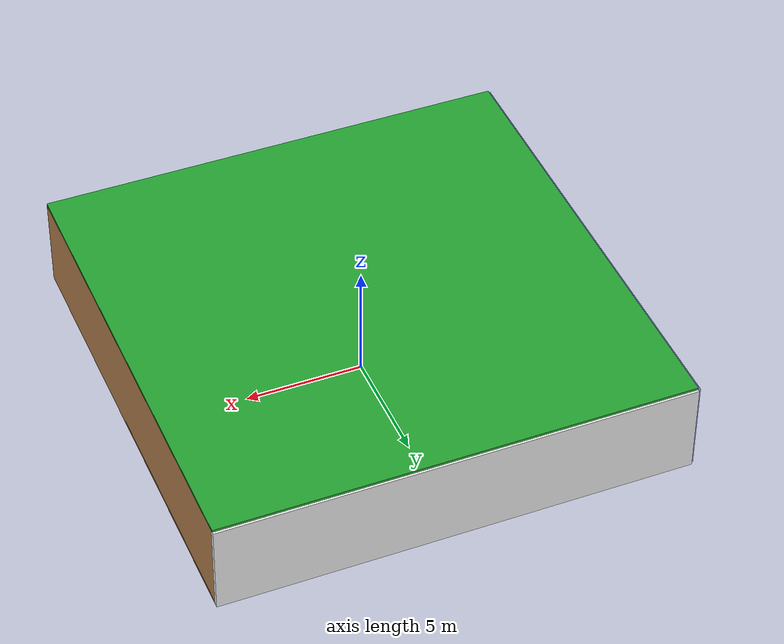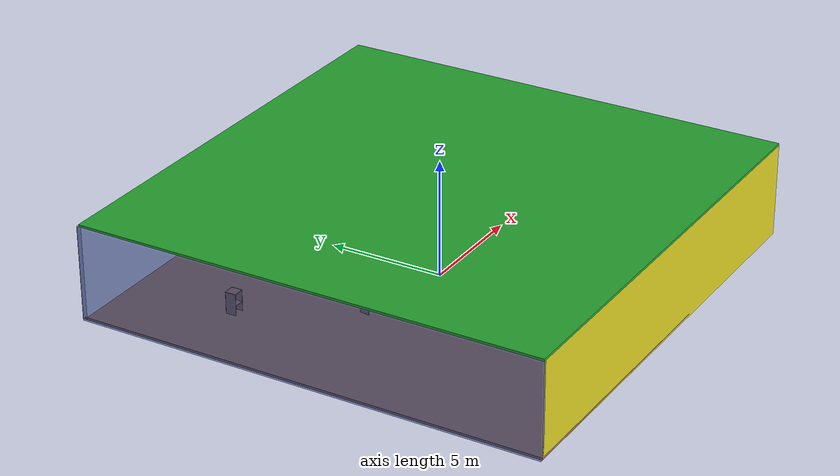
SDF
<sdf version="1.4">
 <world name="default">
  <physics type="ode">
   <max_step_size>0.001</max_step_size>
   <real_time_factor>1</real_time_factor>
   <real_time_update_rate>1000</real_time_update_rate>
   <gravity>0 0 -9.8</gravity>
  </physics>
  <scene><ambient>0.4 0.4 0.4 1</ambient><background>0.7 0.7 0.7 1</background><shadows>1</shadows></scene>
  <model name="Surrounding">
   <static>1</static>
   <link name="Ceiling">
    <collision name="Ceiling_Collision"><geometry><box><size>20 20 0.1</size></box></geometry></collision>
    <visual name="Ceiling_Visual">
     <geometry><box><size>20 20 0.1</size></box></geometry>
     <material>
      <script><uri>file://media/materials/scripts/gazebo.material</uri><name>Gazebo/GreenGlow</name></script>
     </material>
    </visual>
    <pose>0 0 4.05 0 0 0</pose>
   </link>
   <link name="Wall_South">
    <collision name="Wall_South_Collision">
     <geometry><box><size>20 0 4</size></box></geometry>
     <pose>0 0 2 0 -0 0</pose>
    </collision>
    <visual name="Wall_South_Visual">
     <pose>0 0 2 0 -0 0</pose>
     <geometry><box><size>20 0 4</size></box></geometry>
     <material>
      <script><uri>file://media/materials/scripts/gazebo.material</uri><name>Gazebo/Yellow</name></script>
     </material>
    </visual>
    <velocity_decay><linear>0</linear><angular>0</angular></velocity_decay>
    <pose>0 -10 0 0 -0 0</pose>
   </link>
   <link name="Wall_East">
    <collision name="Wall_21_Collision">
     <geometry><box><size>20 0 4</size></box></geometry>
     <pose>0 0 2 0 -0 0</pose>
    </collision>
    <visual name="Wall_21_Visual">
     <pose>0 0 2 0 -0 0</pose>
     <geometry><box><size>20 0 4</size></box></geometry>
     <material>
      <script><uri>file://media/materials/scripts/gazebo.material</uri><name>Gazebo/Wood</name></script>
     </material>
    </visual>
    <velocity_decay><linear>0</linear><angular>0</angular></velocity_decay>
    <pose>10 0 0 0 -0 1.5708</pose>
   </link>
   <link name="Wall_North">
    <collision name="Wall_22_Collision">
     <geometry><box><size>20 0.2 4</size></box></geometry>
     <pose>0 0 2 0 -0 0</pose>
    </collision>
    <visual name="Wall_22_Visual">
     <pose>0 0 2 0 -0 0</pose>
     <geometry><box><size>20 0.2 4</size></box></geometry>
     <material>
      <script><uri>file://media/materials/scripts/gazebo.material</uri><name>Gazebo/WhiteGlow</name></script>
     </material>
    </visual>
    <velocity_decay><linear>0</linear><angular>0</angular></velocity_decay>
    <pose>0 10 0 0 -0 0</pose>
   </link>
   <link name="Wall_West">
    <collision name="Wall_23_Collision">
     <geometry><box><size>20 0.2 4</size></box></geometry>
     <pose>0 0 2 0 -0 0</pose>
    </collision>
    <visual name="Wall_23_Visual">
     <pose>0 0 2 0 -0 0</pose>
     <geometry><box><size>20 0.2 4</size></box></geometry>
     <material>
      <script><uri>file://media/materials/scripts/gazebo.material</uri><name>Gazebo/BlueTransparent</name></script>
     </material>
    </visual>
    <velocity_decay><linear>0</linear><angular>0</angular></velocity_decay>
    <pose>-10 0 0 0 0 -1.5708</pose>
   </link>
   <link name="Ground_link">
    <collision name="collision">
     <pose>0 0 .05 0 -0 0</pose>
     <geometry><box><size>20 20 0.1</size></box></geometry>
    </collision>
    <visual name="visual">
     <pose>0 0 .05 0 -0 0</pose>
     <geometry><box><size>20 20 0.1</size></box></geometry>
     <material>
      <script><uri>file://media/materials/scripts/gazebo.material</uri><name>Gazebo/Wood</name></script>
     </material>
    </visual>
   </link>
   <static>1</static>
  </model>
  <spherical_coordinates>
   <surface_model>EARTH_WGS84</surface_model>
   <latitude_deg>0</latitude_deg>
   <longitude_deg>0</longitude_deg>
   <elevation>0</elevation>
   <heading_deg>0</heading_deg>
  </spherical_coordinates>
  <light name="lightball_0" type="diffuse">
   <diffuse>0.8 0.8 0.8 1</diffuse>
   <specular>0.2 0.2 0.2 1</specular>
   <attenuation>
    <range>100</range>
    <constant>0.7</constant>
    <linear>0.01</linear>
    <quadratic>0.001</quadratic>
   </attenuation>
   <direction>-0.5 0.1 -0.9</direction>
   <pose>-5.09803510992 4.99197840861 1.27013597057 0 0 0</pose>
  </light>
  <light name="lightball_1" type="diffuse">
   <diffuse>0.8 0.8 0.8 1</diffuse>
   <specular>0.2 0.2 0.2 1</specular>
   <attenuation>
    <range>100</range>
    <constant>0.7</constant>
    <linear>0.01</linear>
    <quadratic>0.001</quadratic>
   </attenuation>
   <direction>-0.5 0.1 -0.9</direction>
   <pose>-2.65724354657 4.62539438414 1.72250387223 0 0 0</pose>
  </light>
  <light name="lightball_2" type="diffuse">
   <diffuse>0.8 0.8 0.8 1</diffuse>
   <specular>0.2 0.2 0.2 1</specular>
   <attenuation>
    <range>100</range>
    <constant>0.7</constant>
    <linear>0.01</linear>
    <quadratic>0.001</quadratic>
   </attenuation>
   <direction>-0.5 0.1 -0.9</direction>
   <pose>2.54335614055 7.28782233711 0.56110388148 0 0 0</pose>
  </light>
  <light name="lightball_3" type="diffuse">
   <diffuse>0.8 0.8 0.8 1</diffuse>
   <specular>0.2 0.2 0.2 1</specular>
   <attenuation>
    <range>100</range>
    <constant>0.7</constant>
    <linear>0.01</linear>
    <quadratic>0.001</quadratic>
   </attenuation>
   <direction>-0.5 0.1 -0.9</direction>
   <pose>2.46403930136 2.24429376734 2.35735112415 0 0 0</pose>
  </light>
  <light name="lightball_4" type="diffuse">
   <diffuse>0.8 0.8 0.8 1</diffuse>
   <specular>0.2 0.2 0.2 1</specular>
   <attenuation>
    <range>100</range>
    <constant>0.7</constant>
    <linear>0.01</linear>
    <quadratic>0.001</quadratic>
   </attenuation>
   <direction>-0.5 0.1 -0.9</direction>
   <pose>-4.41717407026 7.99979154261 2.4478851236 0 0 0</pose>
  </light>
  <light name="lightball_5" type="diffuse">
   <diffuse>0.8 0.8 0.8 1</diffuse>
   <specular>0.2 0.2 0.2 1</specular>
   <attenuation>
    <range>100</range>
    <constant>0.7</constant>
    <linear>0.01</linear>
    <quadratic>0.001</quadratic>
   </attenuation>
   <direction>-0.5 0.1 -0.9</direction>
   <pose>6.71225058052 5.88729961155 2.62800852136 0 0 0</pose>
  </light>
  <light name="lightball_6" type="diffuse">
   <diffuse>0.8 0.8 0.8 1</diffuse>
   <specular>0.2 0.2 0.2 1</specular>
   <attenuation>
    <range>100</range>
    <constant>0.7</constant>
    <linear>0.01</linear>
    <quadratic>0.001</quadratic>
   </attenuation>
   <direction>-0.5 0.1 -0.9</direction>
   <pose>9.14113966158 -4.97718606539 2.5873594485 0 0 0</pose>
  </light>
  <light name="lightball_7" type="diffuse">
   <diffuse>0.8 0.8 0.8 1</diffuse>
   <specular>0.2 0.2 0.2 1</specular>
   <attenuation>
    <range>100</range>
    <constant>0.7</constant>
    <linear>0.01</linear>
    <quadratic>0.001</quadratic>
   </attenuation>
   <direction>-0.5 0.1 -0.9</direction>
   <pose>-5.9796183507 0.19536559632 1.3249868748 0 0 0</pose>
  </light>
  <include><uri>model://cabinet</uri><pose>-6.75737744523 5.25571145938 0 0 0 1.60857360079</pose></include>
  <include><uri>model://cabinet</uri><pose>-4.08925604811 0.813117507595 0 0 0 1.3992718768</pose></include>
  <include><uri>model://cabinet</uri><pose>-0.786846348247 1.35716322828 0 0 0 1.97656137011</pose></include>
  <include><uri>model://cabinet</uri><pose>-1.8904394358 7.84750029743 0 0 0 2.56093749809</pose></include>
  <include><uri>model://table</uri><pose>2.04258501213 1.7317151377 0 0 0 1.65066102092</pose></include>
  <include>
   <uri>model://robocup_3Dsim_goal</uri>
   <pose>0.736076179049 7.5962964601 0 0 0 2.17806003358</pose>
  </include>
  <include>
   <uri>model://construction_cone</uri>
   <pose>3.852547025 -7.79112293428 0 0 0 2.22162307017</pose>
  </include>
  <include><uri>model://table</uri><pose>7.75140873249 -4.82299602741 0 0 0 1.654121</pose></include>
 </world>
</sdf>

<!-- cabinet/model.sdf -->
<sdf version="1.5">
  <model name="cabinet">
    <static>true</static>
    <link name="cabinet_bottom_plate">
      <inertial>
        <pose>0 0 -1 0 0 0</pose>
        <inertia>
          <ixx>2.050000</ixx>
          <ixy>0</ixy>
          <ixz>0</ixz>
          <iyy>2.050000</iyy>
          <iyz>0</iyz>
          <izz>2.050000</izz>
        </inertia>
        <mass>25.000000</mass>
      </inertial>
      <collision name="cabinet_bottom_plate_geom">
        <pose>0 0 0.010000 0 0 0</pose>
        <geometry>
          <box>
            <size>0.450000 0.450000 0.020000</size>
          </box>
        </geometry>
      </collision>
      <visual name="cabinet_bottom_plate_geom_visual">
        <pose>0 0 0.010000 0 0 0</pose>
        <geometry>
          <box>
            <size>0.450000 0.450000 0.020000</size>
          </box>
        </geometry>
        <material>
          <script>
            <uri>model://media/materials/scripts/gazebo.material</uri>
            <name>Gazebo/Wood</name>
          </script>
        </material>
      </visual>
      <collision name="cabinet_bottom_plate_geom_cabinet_back_plate">
        <pose>0.235000 0 0.510000 0 0 0</pose>
        <geometry>
          <box>
            <size>0.020000 0.450000 1.020000</size>
          </box>
        </geometry>
      </collision>
      <visual name="cabinet_bottom_plate_geom_cabinet_back_plate_visual">
        <pose>0.235000 0 0.510000 0 0 0</pose>
        <geometry>
          <box>
            <size>0.020000 0.450000 1.020000</size>
          </box>
        </geometry>
        <material>
          <script>
            <uri>model://media/materials/scripts/gazebo.material</uri>
            <name>Gazebo/Wood</name>
          </script>
        </material>
      </visual>
      <collision name="cabinet_bottom_plate_geom_cabinet_left_plate">
        <pose>0 0.235000 0.510000 0 0 0</pose>
        <geometry>
          <box>
            <size>0.450000 0.020000 1.020000</size>
          </box>
        </geometry>
      </collision>
      <visual name="cabinet_bottom_plate_geom_cabinet_left_plate_visual">
        <pose>0 0.235000 0.510000 0 0 0</pose>
        <geometry>
          <box>
            <size>0.450000 0.020000 1.020000</size>
          </box>
        </geometry>
        <material>
          <script>
            <uri>model://media/materials/scripts/gazebo.material</uri>
            <name>Gazebo/Wood</name>
          </script>
        </material>
      </visual>
      <collision name="cabinet_bottom_plate_geom_cabinet_middle_plate">
        <pose>0 0 0.510000 0 0 0</pose>
        <geometry>
          <box>
            <size>0.450000 0.450000 0.020000</size>
          </box>
        </geometry>
      </collision>
      <visual name="cabinet_bottom_plate_geom_cabinet_middle_plate_visual">
        <pose>0 0 0.510000 0 0 0</pose>
        <geometry>
          <box>
            <size>0.450000 0.450000 0.020000</size>
          </box>
        </geometry>
        <material>
          <script>
            <uri>model://media/materials/scripts/gazebo.material</uri>
            <name>Gazebo/Wood</name>
          </script>
        </material>
      </visual>
      <collision name="cabinet_bottom_plate_geom_cabinet_right_plate">
        <pose>0 -0.235000 0.510000 0 0 0</pose>
        <geometry>
          <box>
            <size>0.450000 0.020000 1.020000</size>
          </box>
        </geometry>
      </collision>
      <visual name="cabinet_bottom_plate_geom_cabinet_right_plate_visual">
        <pose>0 -0.235000 0.510000 0 0 0</pose>
        <geometry>
          <box>
            <size>0.450000 0.020000 1.020000</size>
          </box>
        </geometry>
        <material>
          <script>
            <uri>model://media/materials/scripts/gazebo.material</uri>
            <name>Gazebo/Wood</name>
          </script>
        </material>
      </visual>
      <collision name="cabinet_bottom_plate_geom_cabinet_top_plate">
        <pose>0 0 1.010000 0 0 0</pose>
        <geometry>
          <box>
            <size>0.450000 0.450000 0.020000</size>
          </box>
        </geometry>
      </collision>
      <visual name="cabinet_bottom_plate_geom_cabinet_top_plate_visual">
        <pose>0 0 1.010000 0 0 0</pose>
        <geometry>
          <box>
            <size>0.450000 0.450000 0.020000</size>
          </box>
        </geometry>
        <material>
          <script>
            <uri>model://media/materials/scripts/gazebo.material</uri>
            <name>Gazebo/Wood</name>
          </script>
        </material>
      </visual>
    </link>
  </model>
</sdf>

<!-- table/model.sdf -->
<sdf version="1.5">
  <model name="table">
    <static>true</static>
    <link name="link">
      <collision name="surface">
        <pose>0 0 1.0 0 0 0</pose>
        <geometry>
          <box>
            <size>1.5 0.8 0.03</size>
          </box>
        </geometry>
        <surface>
          <friction>
            <ode>
              <mu>0.6</mu>
              <mu2>0.6</mu2>
            </ode>
          </friction>
        </surface>
      </collision>
      <visual name="visual1">
        <pose>0 0 1.0 0 0 0</pose>
        <geometry>
          <box>
            <size>1.5 0.8 0.03</size>
          </box>
        </geometry>
        <material>
          <script>
            <uri>model://media/materials/scripts/gazebo.material</uri>
            <name>Gazebo/Wood</name>
          </script>
        </material>
      </visual>
      <collision name="front_left_leg">
        <pose>0.68 0.38 0.5 0 0 0</pose>
        <geometry>
          <cylinder>
            <radius>0.02</radius>
            <length>1.0</length>
          </cylinder>
        </geometry>
      </collision>
      <visual name="front_left_leg">
        <pose>0.68 0.38 0.5 0 0 0</pose>
        <geometry>
          <cylinder>
            <radius>0.02</radius>
            <length>1.0</length>
          </cylinder>
        </geometry>
        <material>
          <script>
            <uri>model://media/materials/scripts/gazebo.material</uri>
            <name>Gazebo/Grey</name>
          </script>
        </material>
      </visual>
      <collision name="front_right_leg">
        <pose>0.68 -0.38 0.5 0 0 0</pose>
        <geometry>
          <cylinder>
            <radius>0.02</radius>
            <length>1.0</length>
          </cylinder>
        </geometry>
      </collision>
      <visual name="front_right_leg">
        <pose>0.68 -0.38 0.5 0 0 0</pose>
        <geometry>
          <cylinder>
            <radius>0.02</radius>
            <length>1.0</length>
          </cylinder>
        </geometry>
        <material>
          <script>
            <uri>model://media/materials/scripts/gazebo.material</uri>
            <name>Gazebo/Grey</name>
          </script>
        </material>
      </visual>
      <collision name="back_right_leg">
        <pose>-0.68 -0.38 0.5 0 0 0</pose>
        <geometry>
          <cylinder>
            <radius>0.02</radius>
            <length>1.0</length>
          </cylinder>
        </geometry>
      </collision>
      <visual name="back_right_leg">
        <pose>-0.68 -0.38 0.5 0 0 0</pose>
        <geometry>
          <cylinder>
            <radius>0.02</radius>
            <length>1.0</length>
          </cylinder>
        </geometry>
        <material>
          <script>
            <uri>model://media/materials/scripts/gazebo.material</uri>
            <name>Gazebo/Grey</name>
          </script>
        </material>
      </visual>
      <collision name="back_left_leg">
        <pose>-0.68 0.38 0.5 0 0 0</pose>
        <geometry>
          <cylinder>
            <radius>0.02</radius>
            <length>1.0</length>
          </cylinder>
        </geometry>
      </collision>
      <visual name="back_left_leg">
        <pose>-0.68 0.38 0.5 0 0 0</pose>
        <geometry>
          <cylinder>
            <radius>0.02</radius>
            <length>1.0</length>
          </cylinder>
        </geometry>
        <material>
          <script>
            <uri>model://media/materials/scripts/gazebo.material</uri>
            <name>Gazebo/Grey</name>
          </script>
        </material>
      </visual>
    </link>
  </model>
</sdf>

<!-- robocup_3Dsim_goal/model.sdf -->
<sdf version="1.5">
  <model name="robocup_3d_goal">
    <static>true</static>
    <link name="left_post">
      <pose>0 1.05 0.45 0 0 0</pose>
      <collision name="collision">
        <geometry>
          <cylinder>
            <radius>0.05</radius>
            <length>0.9</length>
          </cylinder>
        </geometry>
      </collision>
      <visual name="visual">
        <geometry>
          <cylinder>
            <radius>0.05</radius>
            <length>0.9</length>
          </cylinder>
        </geometry>
        <material>
          <script>
            <uri>file://media/materials/scripts/gazebo.material</uri>
            <name>Gazebo/ZincYellow</name>
          </script>
        </material>
      </visual>
    </link>
    <link name="left_support_horiz_lower">
      <pose>0.30 1.05 0.01 0 0 0</pose>
      <collision name="collision">
        <geometry>
          <box>
            <size>0.50 0.02 0.02</size>
          </box>
        </geometry>
      </collision>
      <visual name="visual">
        <geometry>
          <box>
            <size>0.50 0.02 0.02</size>
          </box>
        </geometry>
        <material>
          <script>
            <uri>file://media/materials/scripts/gazebo.material</uri>
            <name>Gazebo/White</name>
          </script>
        </material>
      </visual>
    </link>
    <link name="left_support_horiz_upper">
      <pose>0.30 1.05 0.79 0 0 0</pose>
      <collision name="collision">
        <geometry>
          <box>
            <size>0.50 0.02 0.02</size>
          </box>
        </geometry>
      </collision>
      <visual name="visual">
        <geometry>
          <box>
            <size>0.50 0.02 0.02</size>
          </box>
        </geometry>
        <material>
          <script>
            <uri>file://media/materials/scripts/gazebo.material</uri>
            <name>Gazebo/White</name>
          </script>
        </material>
      </visual>
    </link>
    <link name="left_support_vertical">
      <pose>0.56 1.05 0.4 0 1.5708 0</pose>
      <collision name="collision">
        <geometry>
          <box>
            <size>0.80 0.02 0.02</size>
          </box>
        </geometry>
      </collision>
      <visual name="visual">
        <geometry>
          <box>
            <size>0.80 0.02 0.02</size>
          </box>
        </geometry>
        <material>
          <script>
            <uri>file://media/materials/scripts/gazebo.material</uri>
            <name>Gazebo/White</name>
          </script>
        </material>
      </visual>
    </link>
    <link name="right_support_horiz_lower">
      <pose>0.30 -1.05 0.01 0 0 0</pose>
      <collision name="collision">
        <geometry>
          <box>
            <size>0.50 0.02 0.02</size>
          </box>
        </geometry>
      </collision>
      <visual name="visual">
        <geometry>
          <box>
            <size>0.50 0.02 0.02</size>
          </box>
        </geometry>
        <material>
          <script>
            <uri>file://media/materials/scripts/gazebo.material</uri>
            <name>Gazebo/White</name>
          </script>
        </material>
      </visual>
    </link>
    <link name="right_support_horiz_upper">
      <pose>0.30 -1.05 0.79 0 0 0</pose>
      <collision name="collision">
        <geometry>
          <box>
            <size>0.50 0.02 0.02</size>
          </box>
        </geometry>
      </collision>
      <visual name="visual">
        <geometry>
          <box>
            <size>0.50 0.02 0.02</size>
          </box>
        </geometry>
        <material>
          <script>
            <uri>file://media/materials/scripts/gazebo.material</uri>
            <name>Gazebo/White</name>
          </script>
        </material>
      </visual>
    </link>
    <link name="right_support_vertical">
      <pose>0.56 -1.05 0.4 0 1.5708 0</pose>
      <collision name="collision">
        <geometry>
          <box>
            <size>0.80 0.02 0.02</size>
          </box>
        </geometry>
      </collision>
      <visual name="visual">
        <geometry>
          <box>
            <size>0.80 0.02 0.02</size>
          </box>
        </geometry>
        <material>
          <script>
            <uri>file://media/materials/scripts/gazebo.material</uri>
            <name>Gazebo/White</name>
          </script>
        </material>
      </visual>
    </link>
    <link name="center_support_horiz_lower">
      <pose>0.56 0 0.01 0 1.5708 0</pose>
      <collision name="collision">
        <geometry>
          <box>
            <size>0.02 2.08 0.02</size>
          </box>
        </geometry>
      </collision>
      <visual name="visual">
        <geometry>
          <box>
            <size>0.02 2.08 0.02</size>
          </box>
        </geometry>
        <material>
          <script>
            <uri>file://media/materials/scripts/gazebo.material</uri>
            <name>Gazebo/White</name>
          </script>
        </material>
      </visual>
    </link>
    <link name="center_support_horiz_upper">
      <pose>0.56 0 0.79 0 1.5708 0</pose>
      <collision name="collision">
        <geometry>
          <box>
            <size>0.02 2.08 0.02</size>
          </box>
        </geometry>
      </collision>
      <visual name="visual">
        <geometry>
          <box>
            <size>0.02 2.08 0.02</size>
          </box>
        </geometry>
        <material>
          <script>
            <uri>file://media/materials/scripts/gazebo.material</uri>
            <name>Gazebo/White</name>
          </script>
        </material>
      </visual>
    </link>
    <link name="right_post">
      <pose>0 -1.05 0.45 0 0 0</pose>
      <collision name="collision">
        <geometry>
          <cylinder>
            <radius>0.05</radius>
            <length>0.9</length>
          </cylinder>
        </geometry>
      </collision>
      <visual name="visual">
        <geometry>
          <cylinder>
            <radius>0.05</radius>
            <length>0.9</length>
          </cylinder>
        </geometry>
        <material>
          <script>
            <uri>file://media/materials/scripts/gazebo.material</uri>
            <name>Gazebo/ZincYellow</name>
          </script>
        </material>
      </visual>
    </link>
    <link name="crossbar">
      <pose>0 0 0.85 1.57 1.57 0</pose>
      <collision name="collision">
        <geometry>
          <cylinder>
            <radius>0.05</radius>
            <length>2.0</length>
          </cylinder>
        </geometry>
      </collision>
      <visual name="visual">
        <geometry>
          <cylinder>
            <radius>0.05</radius>
            <length>2.0</length>
          </cylinder>
        </geometry>
        <material>
          <script>
            <uri>file://media/materials/scripts/gazebo.material</uri>
            <name>Gazebo/ZincYellow</name>
          </script>
        </material>
      </visual>
    </link>
    <link name="center_net">
      <pose>0.56 0 0.40 0 0 0</pose>
      <collision name="collision">
        <geometry>
          <box>
            <size>0.01 2.1 0.80</size>
          </box>
        </geometry>
      </collision>
      <visual name="visual">
        <geometry>
          <box>
            <size>0.01 2.1 0.80</size>
          </box>
        </geometry>
        <material>
          <script>
            <uri>model://../model_source/models/robocup09_spl_field/materials/scripts/</uri>
            <uri>model://../model_source/models/robocup09_spl_field/materials/textures/</uri>
            <name>RoboCup/Net</name>
          </script>
        </material>
      </visual>
    </link>
    <link name="left_net">
      <pose>0.30 1.05 0.40 0 0 0</pose>
      <collision name="collision">
        <geometry>
          <box>
            <size>0.50 0.01 0.76</size>
          </box>
        </geometry>
      </collision>
      <visual name="visual">
        <geometry>
          <box>
            <size>0.50 0.01 0.76</size>
          </box>
        </geometry>
        <material>
          <script>
            <uri>model://../model_source/models/robocup09_spl_field/materials/scripts/</uri>
            <uri>model://../model_source/models/robocup09_spl_field/materials/textures/</uri>
            <name>RoboCup/Net</name>
          </script>
        </material>
      </visual>
    </link>
    <link name="right_net">
      <pose>0.30 -1.05 0.40 0 0 0</pose>
      <collision name="collision">
        <geometry>
          <box>
            <size>0.50 0.01 0.76</size>
          </box>
        </geometry>
      </collision>
      <visual name="visual">
        <geometry>
          <box>
            <size>0.50 0.01 0.76</size>
          </box>
        </geometry>
        <material>
          <script>
            <uri>model://../model_source/models/robocup09_spl_field/materials/scripts/</uri>
            <uri>model://../model_source/models/robocup09_spl_field/materials/textures/</uri>
            <name>RoboCup/Net</name>
          </script>
        </material>
      </visual>
    </link>
  </model>
</sdf>

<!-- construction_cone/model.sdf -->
<sdf version="1.5">
  <model name="Construction Cone">
    <link name="link">
      <collision name="collision">
        <geometry>
          <mesh>
            <scale>10 10 10</scale>
            <uri>file://isr-testbed/construction_cone/meshes/construction_cone.dae</uri>
          </mesh>
        </geometry>
      </collision>
      <visual name="visual">
        <geometry>
          <mesh>
            <scale>10 10 10</scale>
            <uri>file://isr-testbed/construction_cone/meshes/construction_cone.dae</uri>
          </mesh>
        </geometry>
      </visual>
    </link>
  </model>
</sdf>
